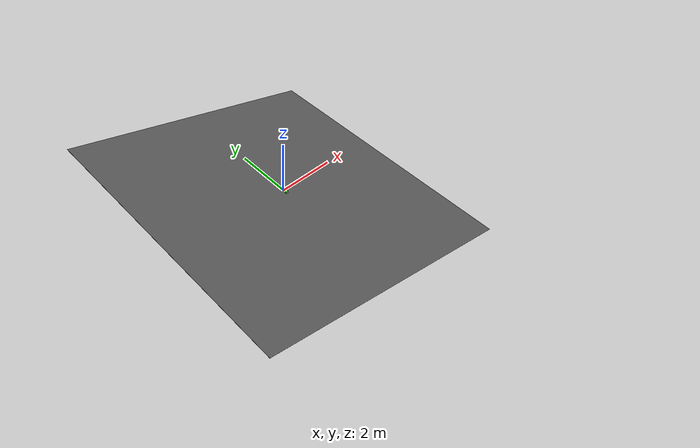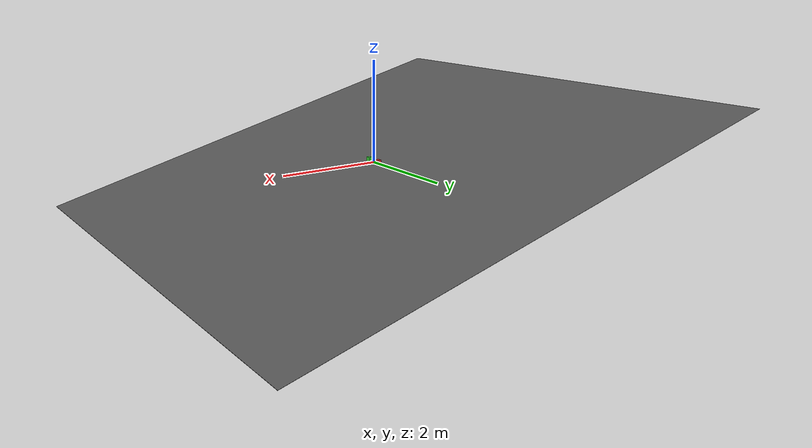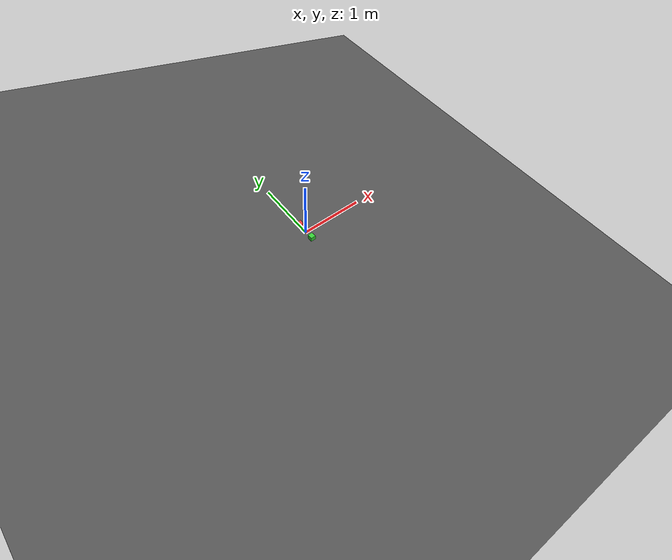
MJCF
<mujoco model="pair-override">
  <compiler angle="radian"/>
  <option gravity="0 0 -9.81" timestep="0.001" solver="Newton"
          iterations="50" tolerance="1e-10">
    <flag energy="enable"/>
  </option>

  <worldbody>
    <body name="ramp" euler="0 0.2618 0">
      <geom name="floor" type="plane" size="5 5 0.01"
            friction="0 0 0" rgba="0.35 0.35 0.35 1"/>
    </body>

    <!-- Auto-combined: MAX(1.0, 1.0) = 1.0 → holds -->
    <body name="auto" pos="0 -0.15 0.045">
      <freejoint/>
      <geom name="g_auto" type="box" size="0.04 0.04 0.04" mass="0.5"
            friction="1 0.005 0.001" rgba="0.2 0.8 0.2 1"/>
    </body>

    <body name="over" pos="0 0.15 0.045">
      <freejoint/>
      <geom name="g_over" type="box" size="0.04 0.04 0.04" mass="0.5"
            friction="1 0.005 0.001" rgba="0.9 0.2 0.2 1"/>
    </body>
  </worldbody>

  <contact>
    <pair geom1="floor" geom2="g_over"
          friction="0.1 0.1 0.005 0.001 0.001"/>
  </contact>
</mujoco>
